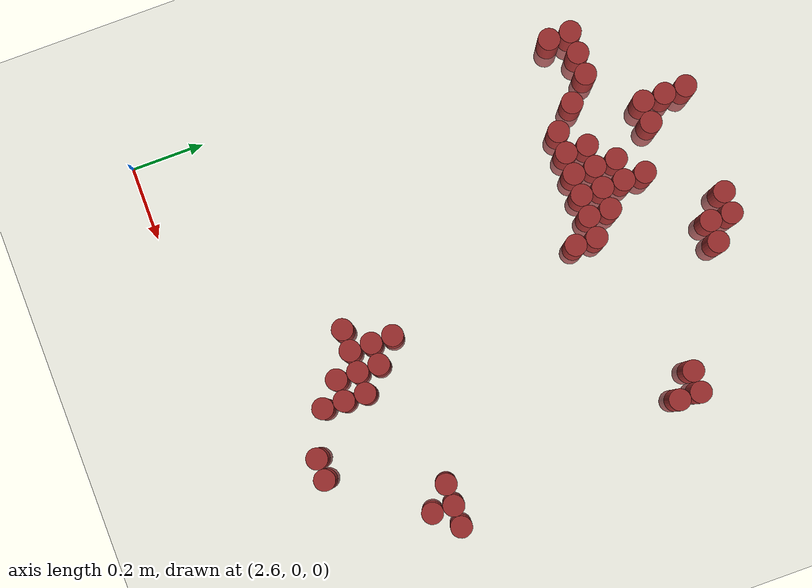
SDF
<sdf version="1.6">
 <world name="default">
  <model name="ground_plane">
   <static>1</static>
   <link name="link">
    <collision name="collision">
     <geometry><plane><normal>0 0 1</normal><size>100 100</size></plane></geometry>
     <surface><friction><ode><mu>100</mu><mu2>50</mu2></ode></friction></surface>
    </collision>
    <visual name="visual">
     <cast_shadows>0</cast_shadows>
     <geometry><plane><normal>0 0 1</normal><size>100 100</size></plane></geometry>
     <material>
      <script><uri>file://media/materials/scripts/gazebo.material</uri><name>Gazebo/Grey</name></script>
     </material>
    </visual>
   </link>
  </model>
  <model name="unit_cylinder_148">
   <static>1</static>
   <pose>2.910000 1.470000 0.000000 0.000000 0.000000 0.000000</pose>
   <link name="link">
    <inertial>
     <mass>1</mass>
     <inertia><ixx>0.145833</ixx><ixy>0</ixy><ixz>0</ixz><iyy>0.145833</iyy><iyz>0</iyz><izz>0.125</izz></inertia>
    </inertial>
    <collision name="collision">
     <geometry><cylinder><radius>0.030000</radius><length>0.5</length></cylinder></geometry>
    </collision>
    <visual name="visual">
     <geometry><cylinder><radius>0.030000</radius><length>0.5</length></cylinder></geometry>
     <material>
      <ambient>0.648000 0.192000 0.192000 1</ambient>
      <diffuse>0.648000 0.192000 0.192000 1</diffuse>
     </material>
     <material>
      <script><name>Gazebo/Grey</name><uri>file://media/materials/scripts/gazebo.material</uri></script>
     </material>
    </visual>
   </link>
  </model>
  <model name="unit_cylinder_149">
   <static>1</static>
   <pose>3.210000 1.470000 0.000000 0.000000 0.000000 0.000000</pose>
   <link name="link">
    <inertial>
     <mass>1</mass>
     <inertia><ixx>0.145833</ixx><ixy>0</ixy><ixz>0</ixz><iyy>0.145833</iyy><iyz>0</iyz><izz>0.125</izz></inertia>
    </inertial>
    <collision name="collision">
     <geometry><cylinder><radius>0.030000</radius><length>0.5</length></cylinder></geometry>
    </collision>
    <visual name="visual">
     <geometry><cylinder><radius>0.030000</radius><length>0.5</length></cylinder></geometry>
     <material>
      <ambient>0.648000 0.192000 0.192000 1</ambient>
      <diffuse>0.648000 0.192000 0.192000 1</diffuse>
     </material>
     <material>
      <script><name>Gazebo/Grey</name><uri>file://media/materials/scripts/gazebo.material</uri></script>
     </material>
    </visual>
   </link>
  </model>
  <model name="unit_cylinder_150">
   <static>1</static>
   <pose>3.270000 1.470000 0.000000 0.000000 0.000000 0.000000</pose>
   <link name="link">
    <inertial>
     <mass>1</mass>
     <inertia><ixx>0.145833</ixx><ixy>0</ixy><ixz>0</ixz><iyy>0.145833</iyy><iyz>0</iyz><izz>0.125</izz></inertia>
    </inertial>
    <collision name="collision">
     <geometry><cylinder><radius>0.030000</radius><length>0.5</length></cylinder></geometry>
    </collision>
    <visual name="visual">
     <geometry><cylinder><radius>0.030000</radius><length>0.5</length></cylinder></geometry>
     <material>
      <ambient>0.648000 0.192000 0.192000 1</ambient>
      <diffuse>0.648000 0.192000 0.192000 1</diffuse>
     </material>
     <material>
      <script><name>Gazebo/Grey</name><uri>file://media/materials/scripts/gazebo.material</uri></script>
     </material>
    </visual>
   </link>
  </model>
  <model name="unit_cylinder_155">
   <static>1</static>
   <pose>2.910000 1.410000 0.000000 0.000000 0.000000 0.000000</pose>
   <link name="link">
    <inertial>
     <mass>1</mass>
     <inertia><ixx>0.145833</ixx><ixy>0</ixy><ixz>0</ixz><iyy>0.145833</iyy><iyz>0</iyz><izz>0.125</izz></inertia>
    </inertial>
    <collision name="collision">
     <geometry><cylinder><radius>0.030000</radius><length>0.5</length></cylinder></geometry>
    </collision>
    <visual name="visual">
     <geometry><cylinder><radius>0.030000</radius><length>0.5</length></cylinder></geometry>
     <material>
      <ambient>0.648000 0.192000 0.192000 1</ambient>
      <diffuse>0.648000 0.192000 0.192000 1</diffuse>
     </material>
     <material>
      <script><name>Gazebo/Grey</name><uri>file://media/materials/scripts/gazebo.material</uri></script>
     </material>
    </visual>
   </link>
  </model>
  <model name="unit_cylinder_156">
   <static>1</static>
   <pose>3.270000 1.410000 0.000000 0.000000 0.000000 0.000000</pose>
   <link name="link">
    <inertial>
     <mass>1</mass>
     <inertia><ixx>0.145833</ixx><ixy>0</ixy><ixz>0</ixz><iyy>0.145833</iyy><iyz>0</iyz><izz>0.125</izz></inertia>
    </inertial>
    <collision name="collision">
     <geometry><cylinder><radius>0.030000</radius><length>0.5</length></cylinder></geometry>
    </collision>
    <visual name="visual">
     <geometry><cylinder><radius>0.030000</radius><length>0.5</length></cylinder></geometry>
     <material>
      <ambient>0.648000 0.192000 0.192000 1</ambient>
      <diffuse>0.648000 0.192000 0.192000 1</diffuse>
     </material>
     <material>
      <script><name>Gazebo/Grey</name><uri>file://media/materials/scripts/gazebo.material</uri></script>
     </material>
    </visual>
   </link>
  </model>
  <model name="unit_cylinder_157">
   <static>1</static>
   <pose>3.330000 1.410000 0.000000 0.000000 0.000000 0.000000</pose>
   <link name="link">
    <inertial>
     <mass>1</mass>
     <inertia><ixx>0.145833</ixx><ixy>0</ixy><ixz>0</ixz><iyy>0.145833</iyy><iyz>0</iyz><izz>0.125</izz></inertia>
    </inertial>
    <collision name="collision">
     <geometry><cylinder><radius>0.030000</radius><length>0.5</length></cylinder></geometry>
    </collision>
    <visual name="visual">
     <geometry><cylinder><radius>0.030000</radius><length>0.5</length></cylinder></geometry>
     <material>
      <ambient>0.648000 0.192000 0.192000 1</ambient>
      <diffuse>0.648000 0.192000 0.192000 1</diffuse>
     </material>
     <material>
      <script><name>Gazebo/Grey</name><uri>file://media/materials/scripts/gazebo.material</uri></script>
     </material>
    </visual>
   </link>
  </model>
  <model name="unit_cylinder_159">
   <static>1</static>
   <pose>2.910000 1.350000 0.000000 0.000000 0.000000 0.000000</pose>
   <link name="link">
    <inertial>
     <mass>1</mass>
     <inertia><ixx>0.145833</ixx><ixy>0</ixy><ixz>0</ixz><iyy>0.145833</iyy><iyz>0</iyz><izz>0.125</izz></inertia>
    </inertial>
    <collision name="collision">
     <geometry><cylinder><radius>0.030000</radius><length>0.5</length></cylinder></geometry>
    </collision>
    <visual name="visual">
     <geometry><cylinder><radius>0.030000</radius><length>0.5</length></cylinder></geometry>
     <material>
      <ambient>0.648000 0.192000 0.192000 1</ambient>
      <diffuse>0.648000 0.192000 0.192000 1</diffuse>
     </material>
     <material>
      <script><name>Gazebo/Grey</name><uri>file://media/materials/scripts/gazebo.material</uri></script>
     </material>
    </visual>
   </link>
  </model>
  <model name="unit_cylinder_160">
   <static>1</static>
   <pose>2.970000 1.350000 0.000000 0.000000 0.000000 0.000000</pose>
   <link name="link">
    <inertial>
     <mass>1</mass>
     <inertia><ixx>0.145833</ixx><ixy>0</ixy><ixz>0</ixz><iyy>0.145833</iyy><iyz>0</iyz><izz>0.125</izz></inertia>
    </inertial>
    <collision name="collision">
     <geometry><cylinder><radius>0.030000</radius><length>0.5</length></cylinder></geometry>
    </collision>
    <visual name="visual">
     <geometry><cylinder><radius>0.030000</radius><length>0.5</length></cylinder></geometry>
     <material>
      <ambient>0.648000 0.192000 0.192000 1</ambient>
      <diffuse>0.648000 0.192000 0.192000 1</diffuse>
     </material>
     <material>
      <script><name>Gazebo/Grey</name><uri>file://media/materials/scripts/gazebo.material</uri></script>
     </material>
    </visual>
   </link>
  </model>
  <model name="unit_cylinder_161">
   <static>1</static>
   <pose>3.090000 1.290000 0.000000 0.000000 0.000000 0.000000</pose>
   <link name="link">
    <inertial>
     <mass>1</mass>
     <inertia><ixx>0.145833</ixx><ixy>0</ixy><ixz>0</ixz><iyy>0.145833</iyy><iyz>0</iyz><izz>0.125</izz></inertia>
    </inertial>
    <collision name="collision">
     <geometry><cylinder><radius>0.030000</radius><length>0.5</length></cylinder></geometry>
    </collision>
    <visual name="visual">
     <geometry><cylinder><radius>0.030000</radius><length>0.5</length></cylinder></geometry>
     <material>
      <ambient>0.648000 0.192000 0.192000 1</ambient>
      <diffuse>0.648000 0.192000 0.192000 1</diffuse>
     </material>
     <material>
      <script><name>Gazebo/Grey</name><uri>file://media/materials/scripts/gazebo.material</uri></script>
     </material>
    </visual>
   </link>
  </model>
  <model name="unit_cylinder_162">
   <static>1</static>
   <pose>2.670000 1.230000 0.000000 0.000000 0.000000 0.000000</pose>
   <link name="link">
    <inertial>
     <mass>1</mass>
     <inertia><ixx>0.145833</ixx><ixy>0</ixy><ixz>0</ixz><iyy>0.145833</iyy><iyz>0</iyz><izz>0.125</izz></inertia>
    </inertial>
    <collision name="collision">
     <geometry><cylinder><radius>0.030000</radius><length>0.5</length></cylinder></geometry>
    </collision>
    <visual name="visual">
     <geometry><cylinder><radius>0.030000</radius><length>0.5</length></cylinder></geometry>
     <material>
      <ambient>0.648000 0.192000 0.192000 1</ambient>
      <diffuse>0.648000 0.192000 0.192000 1</diffuse>
     </material>
     <material>
      <script><name>Gazebo/Grey</name><uri>file://media/materials/scripts/gazebo.material</uri></script>
     </material>
    </visual>
   </link>
  </model>
  <model name="unit_cylinder_163">
   <static>1</static>
   <pose>2.730000 1.230000 0.000000 0.000000 0.000000 0.000000</pose>
   <link name="link">
    <inertial>
     <mass>1</mass>
     <inertia><ixx>0.145833</ixx><ixy>0</ixy><ixz>0</ixz><iyy>0.145833</iyy><iyz>0</iyz><izz>0.125</izz></inertia>
    </inertial>
    <collision name="collision">
     <geometry><cylinder><radius>0.030000</radius><length>0.5</length></cylinder></geometry>
    </collision>
    <visual name="visual">
     <geometry><cylinder><radius>0.030000</radius><length>0.5</length></cylinder></geometry>
     <material>
      <ambient>0.648000 0.192000 0.192000 1</ambient>
      <diffuse>0.648000 0.192000 0.192000 1</diffuse>
     </material>
     <material>
      <script><name>Gazebo/Grey</name><uri>file://media/materials/scripts/gazebo.material</uri></script>
     </material>
    </visual>
   </link>
  </model>
  <model name="unit_cylinder_164">
   <static>1</static>
   <pose>2.790000 1.230000 0.000000 0.000000 0.000000 0.000000</pose>
   <link name="link">
    <inertial>
     <mass>1</mass>
     <inertia><ixx>0.145833</ixx><ixy>0</ixy><ixz>0</ixz><iyy>0.145833</iyy><iyz>0</iyz><izz>0.125</izz></inertia>
    </inertial>
    <collision name="collision">
     <geometry><cylinder><radius>0.030000</radius><length>0.5</length></cylinder></geometry>
    </collision>
    <visual name="visual">
     <geometry><cylinder><radius>0.030000</radius><length>0.5</length></cylinder></geometry>
     <material>
      <ambient>0.648000 0.192000 0.192000 1</ambient>
      <diffuse>0.648000 0.192000 0.192000 1</diffuse>
     </material>
     <material>
      <script><name>Gazebo/Grey</name><uri>file://media/materials/scripts/gazebo.material</uri></script>
     </material>
    </visual>
   </link>
  </model>
  <model name="unit_cylinder_165">
   <static>1</static>
   <pose>3.030000 1.230000 0.000000 0.000000 0.000000 0.000000</pose>
   <link name="link">
    <inertial>
     <mass>1</mass>
     <inertia><ixx>0.145833</ixx><ixy>0</ixy><ixz>0</ixz><iyy>0.145833</iyy><iyz>0</iyz><izz>0.125</izz></inertia>
    </inertial>
    <collision name="collision">
     <geometry><cylinder><radius>0.030000</radius><length>0.5</length></cylinder></geometry>
    </collision>
    <visual name="visual">
     <geometry><cylinder><radius>0.030000</radius><length>0.5</length></cylinder></geometry>
     <material>
      <ambient>0.648000 0.192000 0.192000 1</ambient>
      <diffuse>0.648000 0.192000 0.192000 1</diffuse>
     </material>
     <material>
      <script><name>Gazebo/Grey</name><uri>file://media/materials/scripts/gazebo.material</uri></script>
     </material>
    </visual>
   </link>
  </model>
  <model name="unit_cylinder_166">
   <static>1</static>
   <pose>3.090000 1.230000 0.000000 0.000000 0.000000 0.000000</pose>
   <link name="link">
    <inertial>
     <mass>1</mass>
     <inertia><ixx>0.145833</ixx><ixy>0</ixy><ixz>0</ixz><iyy>0.145833</iyy><iyz>0</iyz><izz>0.125</izz></inertia>
    </inertial>
    <collision name="collision">
     <geometry><cylinder><radius>0.030000</radius><length>0.5</length></cylinder></geometry>
    </collision>
    <visual name="visual">
     <geometry><cylinder><radius>0.030000</radius><length>0.5</length></cylinder></geometry>
     <material>
      <ambient>0.648000 0.192000 0.192000 1</ambient>
      <diffuse>0.648000 0.192000 0.192000 1</diffuse>
     </material>
     <material>
      <script><name>Gazebo/Grey</name><uri>file://media/materials/scripts/gazebo.material</uri></script>
     </material>
    </visual>
   </link>
  </model>
  <model name="unit_cylinder_167">
   <static>1</static>
   <pose>3.630000 1.230000 0.000000 0.000000 0.000000 0.000000</pose>
   <link name="link">
    <inertial>
     <mass>1</mass>
     <inertia><ixx>0.145833</ixx><ixy>0</ixy><ixz>0</ixz><iyy>0.145833</iyy><iyz>0</iyz><izz>0.125</izz></inertia>
    </inertial>
    <collision name="collision">
     <geometry><cylinder><radius>0.030000</radius><length>0.5</length></cylinder></geometry>
    </collision>
    <visual name="visual">
     <geometry><cylinder><radius>0.030000</radius><length>0.5</length></cylinder></geometry>
     <material>
      <ambient>0.648000 0.192000 0.192000 1</ambient>
      <diffuse>0.648000 0.192000 0.192000 1</diffuse>
     </material>
     <material>
      <script><name>Gazebo/Grey</name><uri>file://media/materials/scripts/gazebo.material</uri></script>
     </material>
    </visual>
   </link>
  </model>
  <model name="unit_cylinder_168">
   <static>1</static>
   <pose>3.690000 1.230000 0.000000 0.000000 0.000000 0.000000</pose>
   <link name="link">
    <inertial>
     <mass>1</mass>
     <inertia><ixx>0.145833</ixx><ixy>0</ixy><ixz>0</ixz><iyy>0.145833</iyy><iyz>0</iyz><izz>0.125</izz></inertia>
    </inertial>
    <collision name="collision">
     <geometry><cylinder><radius>0.030000</radius><length>0.5</length></cylinder></geometry>
    </collision>
    <visual name="visual">
     <geometry><cylinder><radius>0.030000</radius><length>0.5</length></cylinder></geometry>
     <material>
      <ambient>0.648000 0.192000 0.192000 1</ambient>
      <diffuse>0.648000 0.192000 0.192000 1</diffuse>
     </material>
     <material>
      <script><name>Gazebo/Grey</name><uri>file://media/materials/scripts/gazebo.material</uri></script>
     </material>
    </visual>
   </link>
  </model>
  <model name="unit_cylinder_169">
   <static>1</static>
   <pose>2.670000 1.170000 0.000000 0.000000 0.000000 0.000000</pose>
   <link name="link">
    <inertial>
     <mass>1</mass>
     <inertia><ixx>0.145833</ixx><ixy>0</ixy><ixz>0</ixz><iyy>0.145833</iyy><iyz>0</iyz><izz>0.125</izz></inertia>
    </inertial>
    <collision name="collision">
     <geometry><cylinder><radius>0.030000</radius><length>0.5</length></cylinder></geometry>
    </collision>
    <visual name="visual">
     <geometry><cylinder><radius>0.030000</radius><length>0.5</length></cylinder></geometry>
     <material>
      <ambient>0.648000 0.192000 0.192000 1</ambient>
      <diffuse>0.648000 0.192000 0.192000 1</diffuse>
     </material>
     <material>
      <script><name>Gazebo/Grey</name><uri>file://media/materials/scripts/gazebo.material</uri></script>
     </material>
    </visual>
   </link>
  </model>
  <model name="unit_cylinder_170">
   <static>1</static>
   <pose>2.850000 1.170000 0.000000 0.000000 0.000000 0.000000</pose>
   <link name="link">
    <inertial>
     <mass>1</mass>
     <inertia><ixx>0.145833</ixx><ixy>0</ixy><ixz>0</ixz><iyy>0.145833</iyy><iyz>0</iyz><izz>0.125</izz></inertia>
    </inertial>
    <collision name="collision">
     <geometry><cylinder><radius>0.030000</radius><length>0.5</length></cylinder></geometry>
    </collision>
    <visual name="visual">
     <geometry><cylinder><radius>0.030000</radius><length>0.5</length></cylinder></geometry>
     <material>
      <ambient>0.648000 0.192000 0.192000 1</ambient>
      <diffuse>0.648000 0.192000 0.192000 1</diffuse>
     </material>
     <material>
      <script><name>Gazebo/Grey</name><uri>file://media/materials/scripts/gazebo.material</uri></script>
     </material>
    </visual>
   </link>
  </model>
  <model name="unit_cylinder_171">
   <static>1</static>
   <pose>2.970000 1.170000 0.000000 0.000000 0.000000 0.000000</pose>
   <link name="link">
    <inertial>
     <mass>1</mass>
     <inertia><ixx>0.145833</ixx><ixy>0</ixy><ixz>0</ixz><iyy>0.145833</iyy><iyz>0</iyz><izz>0.125</izz></inertia>
    </inertial>
    <collision name="collision">
     <geometry><cylinder><radius>0.030000</radius><length>0.5</length></cylinder></geometry>
    </collision>
    <visual name="visual">
     <geometry><cylinder><radius>0.030000</radius><length>0.5</length></cylinder></geometry>
     <material>
      <ambient>0.648000 0.192000 0.192000 1</ambient>
      <diffuse>0.648000 0.192000 0.192000 1</diffuse>
     </material>
     <material>
      <script><name>Gazebo/Grey</name><uri>file://media/materials/scripts/gazebo.material</uri></script>
     </material>
    </visual>
   </link>
  </model>
  <model name="unit_cylinder_172">
   <static>1</static>
   <pose>3.030000 1.170000 0.000000 0.000000 0.000000 0.000000</pose>
   <link name="link">
    <inertial>
     <mass>1</mass>
     <inertia><ixx>0.145833</ixx><ixy>0</ixy><ixz>0</ixz><iyy>0.145833</iyy><iyz>0</iyz><izz>0.125</izz></inertia>
    </inertial>
    <collision name="collision">
     <geometry><cylinder><radius>0.030000</radius><length>0.5</length></cylinder></geometry>
    </collision>
    <visual name="visual">
     <geometry><cylinder><radius>0.030000</radius><length>0.5</length></cylinder></geometry>
     <material>
      <ambient>0.648000 0.192000 0.192000 1</ambient>
      <diffuse>0.648000 0.192000 0.192000 1</diffuse>
     </material>
     <material>
      <script><name>Gazebo/Grey</name><uri>file://media/materials/scripts/gazebo.material</uri></script>
     </material>
    </visual>
   </link>
  </model>
  <model name="unit_cylinder_173">
   <static>1</static>
   <pose>3.090000 1.170000 0.000000 0.000000 0.000000 0.000000</pose>
   <link name="link">
    <inertial>
     <mass>1</mass>
     <inertia><ixx>0.145833</ixx><ixy>0</ixy><ixz>0</ixz><iyy>0.145833</iyy><iyz>0</iyz><izz>0.125</izz></inertia>
    </inertial>
    <collision name="collision">
     <geometry><cylinder><radius>0.030000</radius><length>0.5</length></cylinder></geometry>
    </collision>
    <visual name="visual">
     <geometry><cylinder><radius>0.030000</radius><length>0.5</length></cylinder></geometry>
     <material>
      <ambient>0.648000 0.192000 0.192000 1</ambient>
      <diffuse>0.648000 0.192000 0.192000 1</diffuse>
     </material>
     <material>
      <script><name>Gazebo/Grey</name><uri>file://media/materials/scripts/gazebo.material</uri></script>
     </material>
    </visual>
   </link>
  </model>
  <model name="unit_cylinder_174">
   <static>1</static>
   <pose>3.150000 1.170000 0.000000 0.000000 0.000000 0.000000</pose>
   <link name="link">
    <inertial>
     <mass>1</mass>
     <inertia><ixx>0.145833</ixx><ixy>0</ixy><ixz>0</ixz><iyy>0.145833</iyy><iyz>0</iyz><izz>0.125</izz></inertia>
    </inertial>
    <collision name="collision">
     <geometry><cylinder><radius>0.030000</radius><length>0.5</length></cylinder></geometry>
    </collision>
    <visual name="visual">
     <geometry><cylinder><radius>0.030000</radius><length>0.5</length></cylinder></geometry>
     <material>
      <ambient>0.648000 0.192000 0.192000 1</ambient>
      <diffuse>0.648000 0.192000 0.192000 1</diffuse>
     </material>
     <material>
      <script><name>Gazebo/Grey</name><uri>file://media/materials/scripts/gazebo.material</uri></script>
     </material>
    </visual>
   </link>
  </model>
  <model name="unit_cylinder_175">
   <static>1</static>
   <pose>3.690000 1.170000 0.000000 0.000000 0.000000 0.000000</pose>
   <link name="link">
    <inertial>
     <mass>1</mass>
     <inertia><ixx>0.145833</ixx><ixy>0</ixy><ixz>0</ixz><iyy>0.145833</iyy><iyz>0</iyz><izz>0.125</izz></inertia>
    </inertial>
    <collision name="collision">
     <geometry><cylinder><radius>0.030000</radius><length>0.5</length></cylinder></geometry>
    </collision>
    <visual name="visual">
     <geometry><cylinder><radius>0.030000</radius><length>0.5</length></cylinder></geometry>
     <material>
      <ambient>0.648000 0.192000 0.192000 1</ambient>
      <diffuse>0.648000 0.192000 0.192000 1</diffuse>
     </material>
     <material>
      <script><name>Gazebo/Grey</name><uri>file://media/materials/scripts/gazebo.material</uri></script>
     </material>
    </visual>
   </link>
  </model>
  <model name="unit_cylinder_176">
   <static>1</static>
   <pose>2.910000 1.110000 0.000000 0.000000 0.000000 0.000000</pose>
   <link name="link">
    <inertial>
     <mass>1</mass>
     <inertia><ixx>0.145833</ixx><ixy>0</ixy><ixz>0</ixz><iyy>0.145833</iyy><iyz>0</iyz><izz>0.125</izz></inertia>
    </inertial>
    <collision name="collision">
     <geometry><cylinder><radius>0.030000</radius><length>0.5</length></cylinder></geometry>
    </collision>
    <visual name="visual">
     <geometry><cylinder><radius>0.030000</radius><length>0.5</length></cylinder></geometry>
     <material>
      <ambient>0.648000 0.192000 0.192000 1</ambient>
      <diffuse>0.648000 0.192000 0.192000 1</diffuse>
     </material>
     <material>
      <script><name>Gazebo/Grey</name><uri>file://media/materials/scripts/gazebo.material</uri></script>
     </material>
    </visual>
   </link>
  </model>
  <model name="unit_cylinder_177">
   <static>1</static>
   <pose>2.970000 1.110000 0.000000 0.000000 0.000000 0.000000</pose>
   <link name="link">
    <inertial>
     <mass>1</mass>
     <inertia><ixx>0.145833</ixx><ixy>0</ixy><ixz>0</ixz><iyy>0.145833</iyy><iyz>0</iyz><izz>0.125</izz></inertia>
    </inertial>
    <collision name="collision">
     <geometry><cylinder><radius>0.030000</radius><length>0.5</length></cylinder></geometry>
    </collision>
    <visual name="visual">
     <geometry><cylinder><radius>0.030000</radius><length>0.5</length></cylinder></geometry>
     <material>
      <ambient>0.648000 0.192000 0.192000 1</ambient>
      <diffuse>0.648000 0.192000 0.192000 1</diffuse>
     </material>
     <material>
      <script><name>Gazebo/Grey</name><uri>file://media/materials/scripts/gazebo.material</uri></script>
     </material>
    </visual>
   </link>
  </model>
  <model name="unit_cylinder_178">
   <static>1</static>
   <pose>3.030000 1.110000 0.000000 0.000000 0.000000 0.000000</pose>
   <link name="link">
    <inertial>
     <mass>1</mass>
     <inertia><ixx>0.145833</ixx><ixy>0</ixy><ixz>0</ixz><iyy>0.145833</iyy><iyz>0</iyz><izz>0.125</izz></inertia>
    </inertial>
    <collision name="collision">
     <geometry><cylinder><radius>0.030000</radius><length>0.5</length></cylinder></geometry>
    </collision>
    <visual name="visual">
     <geometry><cylinder><radius>0.030000</radius><length>0.5</length></cylinder></geometry>
     <material>
      <ambient>0.648000 0.192000 0.192000 1</ambient>
      <diffuse>0.648000 0.192000 0.192000 1</diffuse>
     </material>
     <material>
      <script><name>Gazebo/Grey</name><uri>file://media/materials/scripts/gazebo.material</uri></script>
     </material>
    </visual>
   </link>
  </model>
  <model name="unit_cylinder_179">
   <static>1</static>
   <pose>3.090000 1.110000 0.000000 0.000000 0.000000 0.000000</pose>
   <link name="link">
    <inertial>
     <mass>1</mass>
     <inertia><ixx>0.145833</ixx><ixy>0</ixy><ixz>0</ixz><iyy>0.145833</iyy><iyz>0</iyz><izz>0.125</izz></inertia>
    </inertial>
    <collision name="collision">
     <geometry><cylinder><radius>0.030000</radius><length>0.5</length></cylinder></geometry>
    </collision>
    <visual name="visual">
     <geometry><cylinder><radius>0.030000</radius><length>0.5</length></cylinder></geometry>
     <material>
      <ambient>0.648000 0.192000 0.192000 1</ambient>
      <diffuse>0.648000 0.192000 0.192000 1</diffuse>
     </material>
     <material>
      <script><name>Gazebo/Grey</name><uri>file://media/materials/scripts/gazebo.material</uri></script>
     </material>
    </visual>
   </link>
  </model>
  <model name="unit_cylinder_180">
   <static>1</static>
   <pose>3.150000 1.110000 0.000000 0.000000 0.000000 0.000000</pose>
   <link name="link">
    <inertial>
     <mass>1</mass>
     <inertia><ixx>0.145833</ixx><ixy>0</ixy><ixz>0</ixz><iyy>0.145833</iyy><iyz>0</iyz><izz>0.125</izz></inertia>
    </inertial>
    <collision name="collision">
     <geometry><cylinder><radius>0.030000</radius><length>0.5</length></cylinder></geometry>
    </collision>
    <visual name="visual">
     <geometry><cylinder><radius>0.030000</radius><length>0.5</length></cylinder></geometry>
     <material>
      <ambient>0.648000 0.192000 0.192000 1</ambient>
      <diffuse>0.648000 0.192000 0.192000 1</diffuse>
     </material>
     <material>
      <script><name>Gazebo/Grey</name><uri>file://media/materials/scripts/gazebo.material</uri></script>
     </material>
    </visual>
   </link>
  </model>
  <model name="unit_cylinder_181">
   <static>1</static>
   <pose>3.210000 1.110000 0.000000 0.000000 0.000000 0.000000</pose>
   <link name="link">
    <inertial>
     <mass>1</mass>
     <inertia><ixx>0.145833</ixx><ixy>0</ixy><ixz>0</ixz><iyy>0.145833</iyy><iyz>0</iyz><izz>0.125</izz></inertia>
    </inertial>
    <collision name="collision">
     <geometry><cylinder><radius>0.030000</radius><length>0.5</length></cylinder></geometry>
    </collision>
    <visual name="visual">
     <geometry><cylinder><radius>0.030000</radius><length>0.5</length></cylinder></geometry>
     <material>
      <ambient>0.648000 0.192000 0.192000 1</ambient>
      <diffuse>0.648000 0.192000 0.192000 1</diffuse>
     </material>
     <material>
      <script><name>Gazebo/Grey</name><uri>file://media/materials/scripts/gazebo.material</uri></script>
     </material>
    </visual>
   </link>
  </model>
  <model name="unit_cylinder_182">
   <static>1</static>
   <pose>3.210000 1.050000 0.000000 0.000000 0.000000 0.000000</pose>
   <link name="link">
    <inertial>
     <mass>1</mass>
     <inertia><ixx>0.145833</ixx><ixy>0</ixy><ixz>0</ixz><iyy>0.145833</iyy><iyz>0</iyz><izz>0.125</izz></inertia>
    </inertial>
    <collision name="collision">
     <geometry><cylinder><radius>0.030000</radius><length>0.5</length></cylinder></geometry>
    </collision>
    <visual name="visual">
     <geometry><cylinder><radius>0.030000</radius><length>0.5</length></cylinder></geometry>
     <material>
      <ambient>0.648000 0.192000 0.192000 1</ambient>
      <diffuse>0.648000 0.192000 0.192000 1</diffuse>
     </material>
     <material>
      <script><name>Gazebo/Grey</name><uri>file://media/materials/scripts/gazebo.material</uri></script>
     </material>
    </visual>
   </link>
  </model>
  <model name="unit_cylinder_193">
   <static>1</static>
   <pose>3.270000 0.510000 0.000000 0.000000 0.000000 0.000000</pose>
   <link name="link">
    <inertial>
     <mass>1</mass>
     <inertia><ixx>0.145833</ixx><ixy>0</ixy><ixz>0</ixz><iyy>0.145833</iyy><iyz>0</iyz><izz>0.125</izz></inertia>
    </inertial>
    <collision name="collision">
     <geometry><cylinder><radius>0.030000</radius><length>0.5</length></cylinder></geometry>
    </collision>
    <visual name="visual">
     <geometry><cylinder><radius>0.030000</radius><length>0.5</length></cylinder></geometry>
     <material>
      <ambient>0.648000 0.192000 0.192000 1</ambient>
      <diffuse>0.648000 0.192000 0.192000 1</diffuse>
     </material>
     <material>
      <script><name>Gazebo/Grey</name><uri>file://media/materials/scripts/gazebo.material</uri></script>
     </material>
    </visual>
   </link>
  </model>
  <model name="unit_cylinder_194">
   <static>1</static>
   <pose>3.690000 0.510000 0.000000 0.000000 0.000000 0.000000</pose>
   <link name="link">
    <inertial>
     <mass>1</mass>
     <inertia><ixx>0.145833</ixx><ixy>0</ixy><ixz>0</ixz><iyy>0.145833</iyy><iyz>0</iyz><izz>0.125</izz></inertia>
    </inertial>
    <collision name="collision">
     <geometry><cylinder><radius>0.030000</radius><length>0.5</length></cylinder></geometry>
    </collision>
    <visual name="visual">
     <geometry><cylinder><radius>0.030000</radius><length>0.5</length></cylinder></geometry>
     <material>
      <ambient>0.648000 0.192000 0.192000 1</ambient>
      <diffuse>0.648000 0.192000 0.192000 1</diffuse>
     </material>
     <material>
      <script><name>Gazebo/Grey</name><uri>file://media/materials/scripts/gazebo.material</uri></script>
     </material>
    </visual>
   </link>
  </model>
  <model name="unit_cylinder_195">
   <static>1</static>
   <pose>3.750000 0.510000 0.000000 0.000000 0.000000 0.000000</pose>
   <link name="link">
    <inertial>
     <mass>1</mass>
     <inertia><ixx>0.145833</ixx><ixy>0</ixy><ixz>0</ixz><iyy>0.145833</iyy><iyz>0</iyz><izz>0.125</izz></inertia>
    </inertial>
    <collision name="collision">
     <geometry><cylinder><radius>0.030000</radius><length>0.5</length></cylinder></geometry>
    </collision>
    <visual name="visual">
     <geometry><cylinder><radius>0.030000</radius><length>0.5</length></cylinder></geometry>
     <material>
      <ambient>0.648000 0.192000 0.192000 1</ambient>
      <diffuse>0.648000 0.192000 0.192000 1</diffuse>
     </material>
     <material>
      <script><name>Gazebo/Grey</name><uri>file://media/materials/scripts/gazebo.material</uri></script>
     </material>
    </visual>
   </link>
  </model>
  <model name="unit_cylinder_196">
   <static>1</static>
   <pose>3.810000 0.510000 0.000000 0.000000 0.000000 0.000000</pose>
   <link name="link">
    <inertial>
     <mass>1</mass>
     <inertia><ixx>0.145833</ixx><ixy>0</ixy><ixz>0</ixz><iyy>0.145833</iyy><iyz>0</iyz><izz>0.125</izz></inertia>
    </inertial>
    <collision name="collision">
     <geometry><cylinder><radius>0.030000</radius><length>0.5</length></cylinder></geometry>
    </collision>
    <visual name="visual">
     <geometry><cylinder><radius>0.030000</radius><length>0.5</length></cylinder></geometry>
     <material>
      <ambient>0.648000 0.192000 0.192000 1</ambient>
      <diffuse>0.648000 0.192000 0.192000 1</diffuse>
     </material>
     <material>
      <script><name>Gazebo/Grey</name><uri>file://media/materials/scripts/gazebo.material</uri></script>
     </material>
    </visual>
   </link>
  </model>
  <model name="unit_cylinder_199">
   <static>1</static>
   <pose>3.270000 0.450000 0.000000 0.000000 0.000000 0.000000</pose>
   <link name="link">
    <inertial>
     <mass>1</mass>
     <inertia><ixx>0.145833</ixx><ixy>0</ixy><ixz>0</ixz><iyy>0.145833</iyy><iyz>0</iyz><izz>0.125</izz></inertia>
    </inertial>
    <collision name="collision">
     <geometry><cylinder><radius>0.030000</radius><length>0.5</length></cylinder></geometry>
    </collision>
    <visual name="visual">
     <geometry><cylinder><radius>0.030000</radius><length>0.5</length></cylinder></geometry>
     <material>
      <ambient>0.648000 0.192000 0.192000 1</ambient>
      <diffuse>0.648000 0.192000 0.192000 1</diffuse>
     </material>
     <material>
      <script><name>Gazebo/Grey</name><uri>file://media/materials/scripts/gazebo.material</uri></script>
     </material>
    </visual>
   </link>
  </model>
  <model name="unit_cylinder_200">
   <static>1</static>
   <pose>3.330000 0.450000 0.000000 0.000000 0.000000 0.000000</pose>
   <link name="link">
    <inertial>
     <mass>1</mass>
     <inertia><ixx>0.145833</ixx><ixy>0</ixy><ixz>0</ixz><iyy>0.145833</iyy><iyz>0</iyz><izz>0.125</izz></inertia>
    </inertial>
    <collision name="collision">
     <geometry><cylinder><radius>0.030000</radius><length>0.5</length></cylinder></geometry>
    </collision>
    <visual name="visual">
     <geometry><cylinder><radius>0.030000</radius><length>0.5</length></cylinder></geometry>
     <material>
      <ambient>0.648000 0.192000 0.192000 1</ambient>
      <diffuse>0.648000 0.192000 0.192000 1</diffuse>
     </material>
     <material>
      <script><name>Gazebo/Grey</name><uri>file://media/materials/scripts/gazebo.material</uri></script>
     </material>
    </visual>
   </link>
  </model>
  <model name="unit_cylinder_201">
   <static>1</static>
   <pose>3.750000 0.450000 0.000000 0.000000 0.000000 0.000000</pose>
   <link name="link">
    <inertial>
     <mass>1</mass>
     <inertia><ixx>0.145833</ixx><ixy>0</ixy><ixz>0</ixz><iyy>0.145833</iyy><iyz>0</iyz><izz>0.125</izz></inertia>
    </inertial>
    <collision name="collision">
     <geometry><cylinder><radius>0.030000</radius><length>0.5</length></cylinder></geometry>
    </collision>
    <visual name="visual">
     <geometry><cylinder><radius>0.030000</radius><length>0.5</length></cylinder></geometry>
     <material>
      <ambient>0.648000 0.192000 0.192000 1</ambient>
      <diffuse>0.648000 0.192000 0.192000 1</diffuse>
     </material>
     <material>
      <script><name>Gazebo/Grey</name><uri>file://media/materials/scripts/gazebo.material</uri></script>
     </material>
    </visual>
   </link>
  </model>
  <model name="unit_cylinder_206">
   <static>1</static>
   <pose>3.210000 0.390000 0.000000 0.000000 0.000000 0.000000</pose>
   <link name="link">
    <inertial>
     <mass>1</mass>
     <inertia><ixx>0.145833</ixx><ixy>0</ixy><ixz>0</ixz><iyy>0.145833</iyy><iyz>0</iyz><izz>0.125</izz></inertia>
    </inertial>
    <collision name="collision">
     <geometry><cylinder><radius>0.030000</radius><length>0.5</length></cylinder></geometry>
    </collision>
    <visual name="visual">
     <geometry><cylinder><radius>0.030000</radius><length>0.5</length></cylinder></geometry>
     <material>
      <ambient>0.648000 0.192000 0.192000 1</ambient>
      <diffuse>0.648000 0.192000 0.192000 1</diffuse>
     </material>
     <material>
      <script><name>Gazebo/Grey</name><uri>file://media/materials/scripts/gazebo.material</uri></script>
     </material>
    </visual>
   </link>
  </model>
  <model name="unit_cylinder_207">
   <static>1</static>
   <pose>3.270000 0.390000 0.000000 0.000000 0.000000 0.000000</pose>
   <link name="link">
    <inertial>
     <mass>1</mass>
     <inertia><ixx>0.145833</ixx><ixy>0</ixy><ixz>0</ixz><iyy>0.145833</iyy><iyz>0</iyz><izz>0.125</izz></inertia>
    </inertial>
    <collision name="collision">
     <geometry><cylinder><radius>0.030000</radius><length>0.5</length></cylinder></geometry>
    </collision>
    <visual name="visual">
     <geometry><cylinder><radius>0.030000</radius><length>0.5</length></cylinder></geometry>
     <material>
      <ambient>0.648000 0.192000 0.192000 1</ambient>
      <diffuse>0.648000 0.192000 0.192000 1</diffuse>
     </material>
     <material>
      <script><name>Gazebo/Grey</name><uri>file://media/materials/scripts/gazebo.material</uri></script>
     </material>
    </visual>
   </link>
  </model>
  <model name="unit_cylinder_208">
   <static>1</static>
   <pose>3.330000 0.390000 0.000000 0.000000 0.000000 0.000000</pose>
   <link name="link">
    <inertial>
     <mass>1</mass>
     <inertia><ixx>0.145833</ixx><ixy>0</ixy><ixz>0</ixz><iyy>0.145833</iyy><iyz>0</iyz><izz>0.125</izz></inertia>
    </inertial>
    <collision name="collision">
     <geometry><cylinder><radius>0.030000</radius><length>0.5</length></cylinder></geometry>
    </collision>
    <visual name="visual">
     <geometry><cylinder><radius>0.030000</radius><length>0.5</length></cylinder></geometry>
     <material>
      <ambient>0.648000 0.192000 0.192000 1</ambient>
      <diffuse>0.648000 0.192000 0.192000 1</diffuse>
     </material>
     <material>
      <script><name>Gazebo/Grey</name><uri>file://media/materials/scripts/gazebo.material</uri></script>
     </material>
    </visual>
   </link>
  </model>
  <model name="unit_cylinder_209">
   <static>1</static>
   <pose>3.390000 0.390000 0.000000 0.000000 0.000000 0.000000</pose>
   <link name="link">
    <inertial>
     <mass>1</mass>
     <inertia><ixx>0.145833</ixx><ixy>0</ixy><ixz>0</ixz><iyy>0.145833</iyy><iyz>0</iyz><izz>0.125</izz></inertia>
    </inertial>
    <collision name="collision">
     <geometry><cylinder><radius>0.030000</radius><length>0.5</length></cylinder></geometry>
    </collision>
    <visual name="visual">
     <geometry><cylinder><radius>0.030000</radius><length>0.5</length></cylinder></geometry>
     <material>
      <ambient>0.648000 0.192000 0.192000 1</ambient>
      <diffuse>0.648000 0.192000 0.192000 1</diffuse>
     </material>
     <material>
      <script><name>Gazebo/Grey</name><uri>file://media/materials/scripts/gazebo.material</uri></script>
     </material>
    </visual>
   </link>
  </model>
  <model name="unit_cylinder_214">
   <static>1</static>
   <pose>3.330000 0.330000 0.000000 0.000000 0.000000 0.000000</pose>
   <link name="link">
    <inertial>
     <mass>1</mass>
     <inertia><ixx>0.145833</ixx><ixy>0</ixy><ixz>0</ixz><iyy>0.145833</iyy><iyz>0</iyz><izz>0.125</izz></inertia>
    </inertial>
    <collision name="collision">
     <geometry><cylinder><radius>0.030000</radius><length>0.5</length></cylinder></geometry>
    </collision>
    <visual name="visual">
     <geometry><cylinder><radius>0.030000</radius><length>0.5</length></cylinder></geometry>
     <material>
      <ambient>0.648000 0.192000 0.192000 1</ambient>
      <diffuse>0.648000 0.192000 0.192000 1</diffuse>
     </material>
     <material>
      <script><name>Gazebo/Grey</name><uri>file://media/materials/scripts/gazebo.material</uri></script>
     </material>
    </visual>
   </link>
  </model>
  <model name="unit_cylinder_215">
   <static>1</static>
   <pose>3.390000 0.330000 0.000000 0.000000 0.000000 0.000000</pose>
   <link name="link">
    <inertial>
     <mass>1</mass>
     <inertia><ixx>0.145833</ixx><ixy>0</ixy><ixz>0</ixz><iyy>0.145833</iyy><iyz>0</iyz><izz>0.125</izz></inertia>
    </inertial>
    <collision name="collision">
     <geometry><cylinder><radius>0.030000</radius><length>0.5</length></cylinder></geometry>
    </collision>
    <visual name="visual">
     <geometry><cylinder><radius>0.030000</radius><length>0.5</length></cylinder></geometry>
     <material>
      <ambient>0.648000 0.192000 0.192000 1</ambient>
      <diffuse>0.648000 0.192000 0.192000 1</diffuse>
     </material>
     <material>
      <script><name>Gazebo/Grey</name><uri>file://media/materials/scripts/gazebo.material</uri></script>
     </material>
    </visual>
   </link>
  </model>
  <model name="unit_cylinder_218">
   <static>1</static>
   <pose>3.390000 0.270000 0.000000 0.000000 0.000000 0.000000</pose>
   <link name="link">
    <inertial>
     <mass>1</mass>
     <inertia><ixx>0.145833</ixx><ixy>0</ixy><ixz>0</ixz><iyy>0.145833</iyy><iyz>0</iyz><izz>0.125</izz></inertia>
    </inertial>
    <collision name="collision">
     <geometry><cylinder><radius>0.030000</radius><length>0.5</length></cylinder></geometry>
    </collision>
    <visual name="visual">
     <geometry><cylinder><radius>0.030000</radius><length>0.5</length></cylinder></geometry>
     <material>
      <ambient>0.648000 0.192000 0.192000 1</ambient>
      <diffuse>0.648000 0.192000 0.192000 1</diffuse>
     </material>
     <material>
      <script><name>Gazebo/Grey</name><uri>file://media/materials/scripts/gazebo.material</uri></script>
     </material>
    </visual>
   </link>
  </model>
  <model name="unit_cylinder_220">
   <static>1</static>
   <pose>3.510000 0.210000 0.000000 0.000000 0.000000 0.000000</pose>
   <link name="link">
    <inertial>
     <mass>1</mass>
     <inertia><ixx>0.145833</ixx><ixy>0</ixy><ixz>0</ixz><iyy>0.145833</iyy><iyz>0</iyz><izz>0.125</izz></inertia>
    </inertial>
    <collision name="collision">
     <geometry><cylinder><radius>0.030000</radius><length>0.5</length></cylinder></geometry>
    </collision>
    <visual name="visual">
     <geometry><cylinder><radius>0.030000</radius><length>0.5</length></cylinder></geometry>
     <material>
      <ambient>0.648000 0.192000 0.192000 1</ambient>
      <diffuse>0.648000 0.192000 0.192000 1</diffuse>
     </material>
     <material>
      <script><name>Gazebo/Grey</name><uri>file://media/materials/scripts/gazebo.material</uri></script>
     </material>
    </visual>
   </link>
  </model>
  <model name="unit_cylinder_221">
   <static>1</static>
   <pose>3.570000 0.210000 0.000000 0.000000 0.000000 0.000000</pose>
   <link name="link">
    <inertial>
     <mass>1</mass>
     <inertia><ixx>0.145833</ixx><ixy>0</ixy><ixz>0</ixz><iyy>0.145833</iyy><iyz>0</iyz><izz>0.125</izz></inertia>
    </inertial>
    <collision name="collision">
     <geometry><cylinder><radius>0.030000</radius><length>0.5</length></cylinder></geometry>
    </collision>
    <visual name="visual">
     <geometry><cylinder><radius>0.030000</radius><length>0.5</length></cylinder></geometry>
     <material>
      <ambient>0.648000 0.192000 0.192000 1</ambient>
      <diffuse>0.648000 0.192000 0.192000 1</diffuse>
     </material>
     <material>
      <script><name>Gazebo/Grey</name><uri>file://media/materials/scripts/gazebo.material</uri></script>
     </material>
    </visual>
   </link>
  </model>
 </world>
</sdf>
